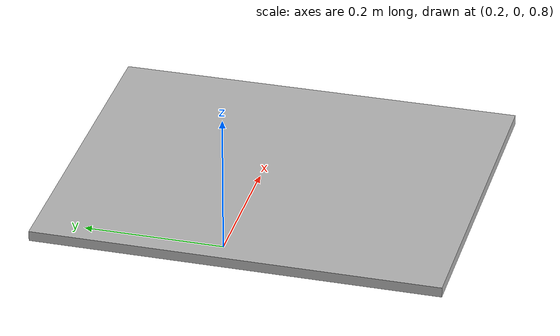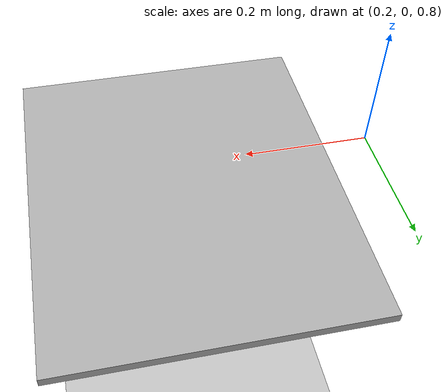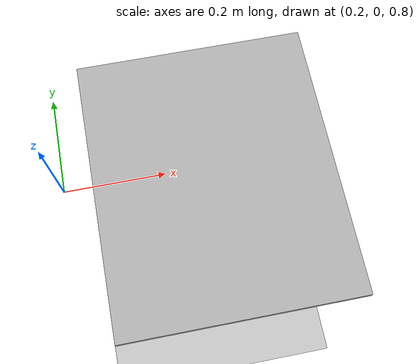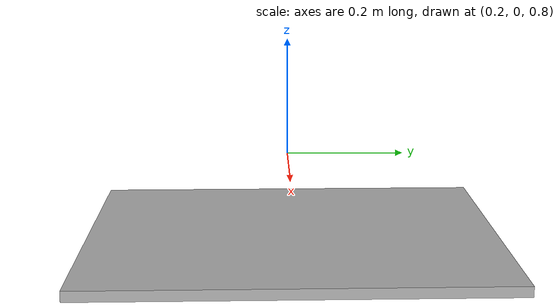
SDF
<?xml version="1.0" ?>
<sdf version="1.4">
  <world name="default">
    <physics type="ode">
      <gravity>0 0 -9.81</gravity>
      <ode>
        <solver>
          <type>quick</type>
          <iters>50</iters>
          <sor>1.4</sor>
        </solver>
        <constraints>
          <cfm>0.0</cfm>
          <erp>0.2</erp>
          <contact_max_correcting_vel>100.0</contact_max_correcting_vel>
          <contact_surface_layer>0.0</contact_surface_layer>
        </constraints>
      </ode>
      <real_time_update_rate>1000</real_time_update_rate>
      <max_step_size>0.001</max_step_size>
    </physics>
    <!-- Light Source -->
    <light type="directional" name="sun">
      <cast_shadows>true</cast_shadows>
      <pose>0 0 10 0 0 0</pose>
      <diffuse>0.8 0.8 0.8 1</diffuse>
      <specular>0.2 0.2 0.2 1</specular>
      <attenuation>
	<range>1000</range>
	<constant>0.9</constant>
	<linear>0.01</linear>
	<quadratic>0.001</quadratic>
      </attenuation>
      <direction>-0.5 0.1 -0.9</direction>
    </light>
    <!-- A ground plane -->
    <model name="ground_plane">
      <static>true</static>
      <link name="link">
	<collision name="collision">
          <geometry>
            <plane>
              <normal>0 0 1</normal>
              <size>100 100</size>
            </plane>
          </geometry>
          <surface>
            <friction>
              <ode>
		<mu>100</mu>
		<mu2>50</mu2>
              </ode>
            </friction>
          </surface>
	</collision>
	<visual name="visual">
          <cast_shadows>false</cast_shadows>
          <geometry>
            <plane>
              <normal>0 0 1</normal>
              <size>100 100</size>
            </plane>
          </geometry>
          <material>
            <script>
              <uri>file://media/materials/scripts/gazebo.material</uri>
              <name>Gazebo/Grey</name>
            </script>
          </material>
	</visual>
      </link>
    </model>

    <model name="table_top">
      <pose>.5 0. 0.7425 0 0 0</pose>
      <static>true</static>
      <link name="table_top_body">
        <inertial>
          <mass>1.0</mass>
          <inertia>
            <ixx>1.0</ixx>
            <ixy>0.0</ixy>
            <ixz>0.0</ixz>
            <iyy>1.0</iyy>
            <iyz>0.0</iyz>
            <izz>1.0</izz>
          </inertia>
        </inertial>
        <collision name="collision">
          <geometry>
            <box>
              <size>.50 .60 .015</size>
            </box>
          </geometry>
        </collision>
        <visual name="visual">
          <geometry>
            <box>
              <size>.50 .60 .015</size>
            </box>
          </geometry>
        </visual>
      </link>
    </model>
  </world>
</sdf>
